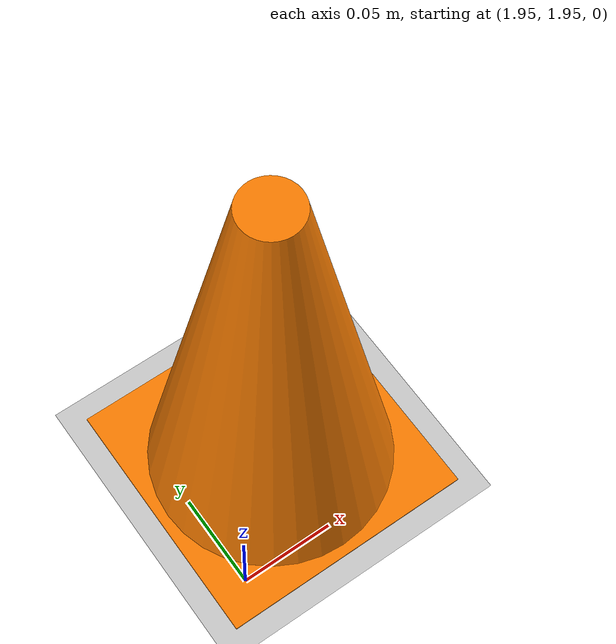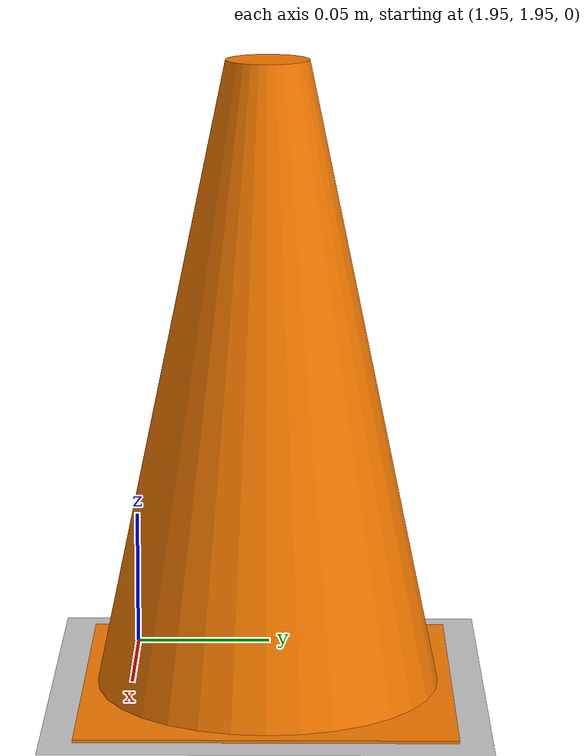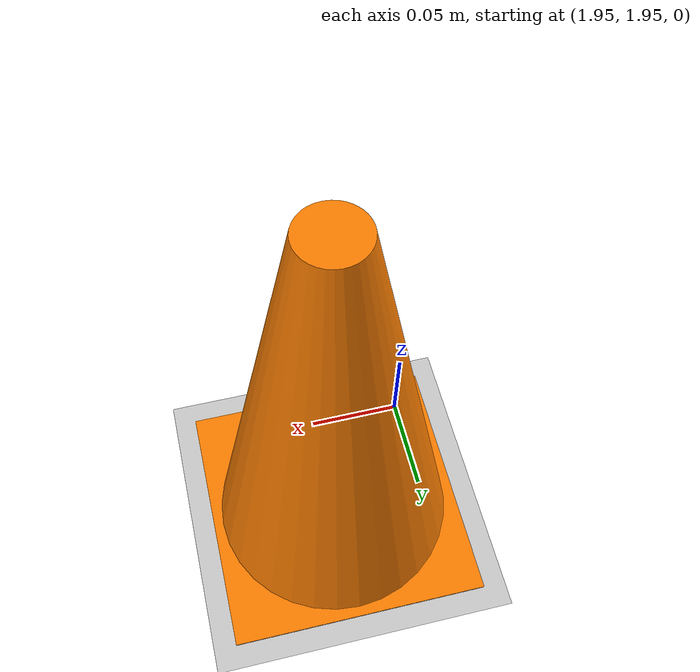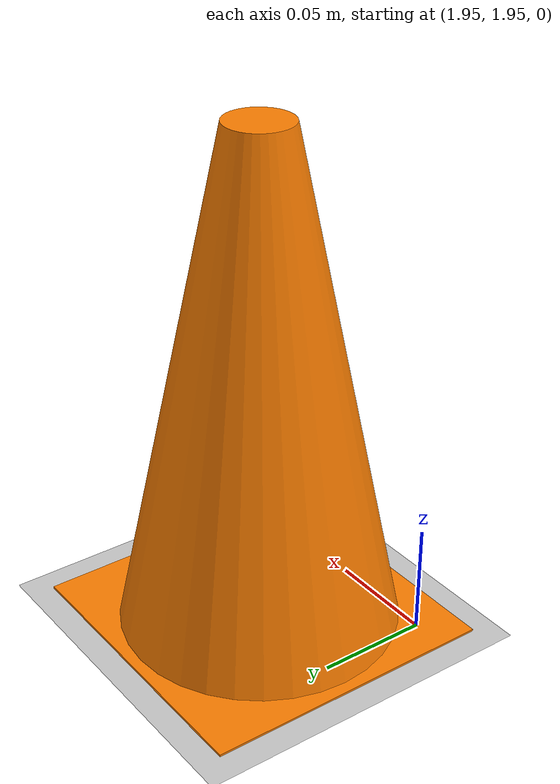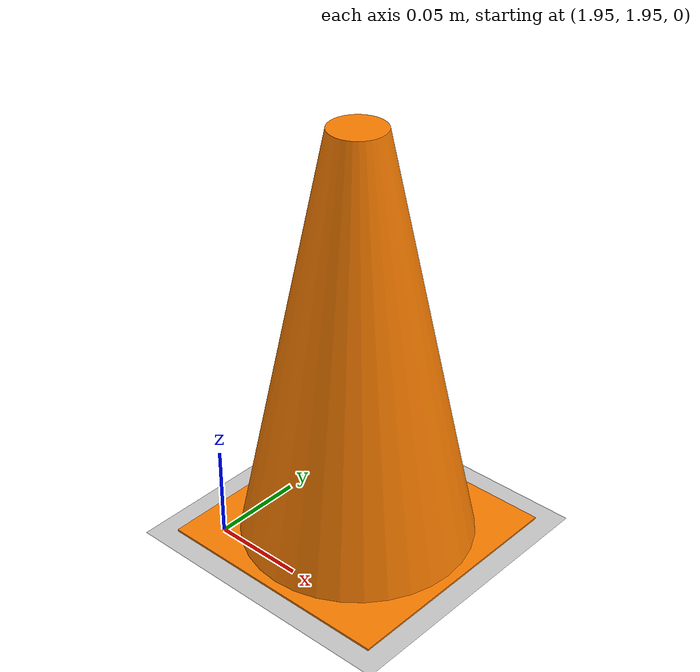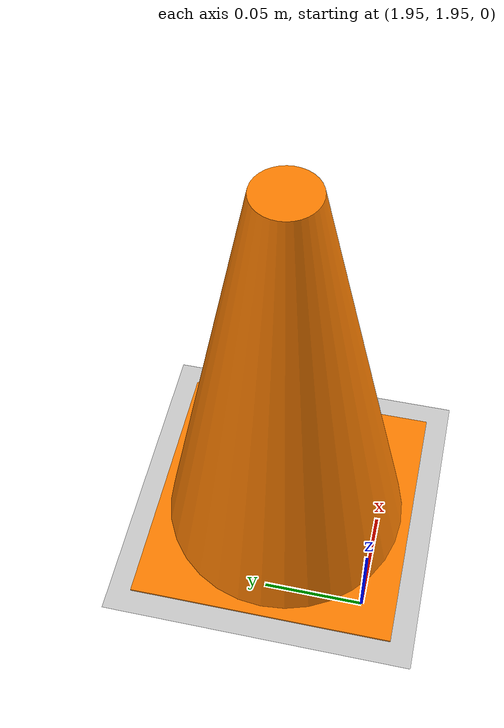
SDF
<?xml version="1.0" ?>
<sdf version="1.4">
    <world name="default">
        <scene>
            <sky>
                <clouds>
                    <speed>12</speed>
                </clouds>
            </sky>
            <ambient>1.0 1.0 1.0 1.0</ambient>
            <shadows>true</shadows>
        </scene>

        <include>
            <uri>model://ground_plane</uri>
        </include>

        <include>
            <uri>model://Cone</uri>
            <pose>2 2 0 0 0 0</pose>
        </include>

        <include>
            <uri>model://sun</uri>
        </include>
    </world>
</sdf>

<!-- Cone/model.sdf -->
<sdf version='1.6'>
  <model name='Cone'>
    <link name='link_0'>
      <pose frame=''>0 0 0 0 -0 0</pose>
      <inertial>
        <mass>1</mass>
        <inertia>
          <ixx>0.166667</ixx>
          <ixy>0</ixy>
          <ixz>0</ixz>
          <iyy>0.166667</iyy>
          <iyz>0</iyz>
          <izz>0.166667</izz>
        </inertia>
      </inertial>
      <visual name='visual'>
        <pose frame=''>0 0 0 0 -0 0</pose>
        <geometry>
          <mesh>
            <uri>model://Cone/cone.dae</uri>
            <scale>1 1 1</scale>
          </mesh>
        </geometry>
        <material>
          <lighting>1</lighting>
          <script>
            <uri>file://media/materials/scripts/gazebo.material</uri>
            <name>Gazebo/Grey</name>
          </script>
          <ambient>0.3 0.3 0.3 1</ambient>
          <diffuse>1.0 0.5 0.0 1</diffuse>
          <specular>0.01 0.01 0.01 1</specular>
          <emissive>0 0 0 1</emissive>
        </material>
        <cast_shadows>1</cast_shadows>
        <transparency>0</transparency>
      </visual>
      <collision name='collision'>
        <laser_retro>0</laser_retro>
        <max_contacts>10</max_contacts>
        <pose frame=''>0 0 0 0 -0 0</pose>
        <geometry>
          <mesh>
            <uri>model://Cone/cone.dae</uri>
          </mesh>
        </geometry>
        <surface>
          <friction>
            <ode>
              <mu>1</mu>
              <mu2>1</mu2>
              <fdir1>0 0 0</fdir1>
              <slip1>0</slip1>
              <slip2>0</slip2>
            </ode>
            <torsional>
              <coefficient>1</coefficient>
              <patch_radius>0</patch_radius>
              <surface_radius>0</surface_radius>
              <use_patch_radius>1</use_patch_radius>
              <ode>
                <slip>0</slip>
              </ode>
            </torsional>
          </friction>
          <bounce>
            <restitution_coefficient>0</restitution_coefficient>
            <threshold>1e+06</threshold>
          </bounce>
          <contact>
            <collide_without_contact>0</collide_without_contact>
            <collide_without_contact_bitmask>1</collide_without_contact_bitmask>
            <collide_bitmask>1</collide_bitmask>
            <ode>
              <soft_cfm>0</soft_cfm>
              <soft_erp>0.2</soft_erp>
              <kp>1e+13</kp>
              <kd>1</kd>
              <max_vel>0.01</max_vel>
              <min_depth>0</min_depth>
            </ode>
            <bullet>
              <split_impulse>1</split_impulse>
              <split_impulse_penetration_threshold>-0.01</split_impulse_penetration_threshold>
              <soft_cfm>0</soft_cfm>
              <soft_erp>0.2</soft_erp>
              <kp>1e+13</kp>
              <kd>1</kd>
            </bullet>
          </contact>
        </surface>
      </collision>
    </link>
    <static>false</static>
    <allow_auto_disable>1</allow_auto_disable>
  </model>
</sdf>
